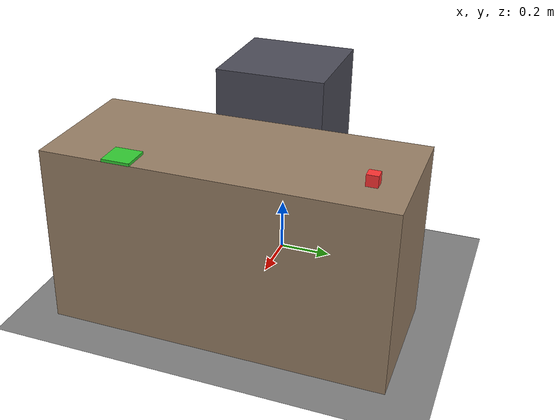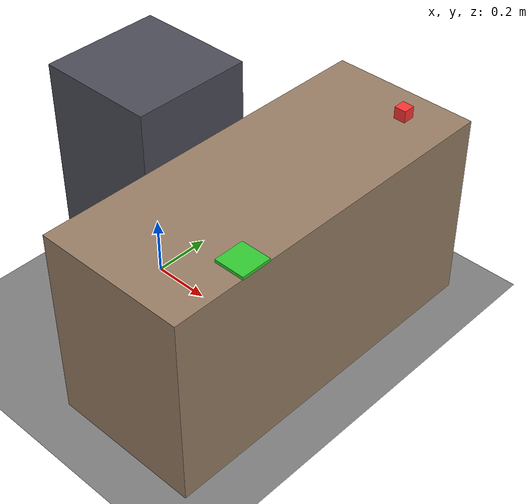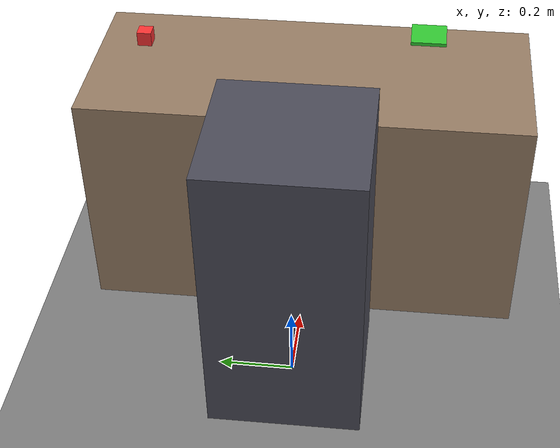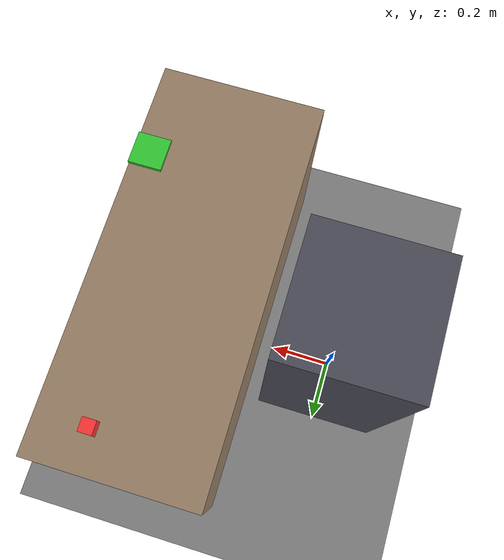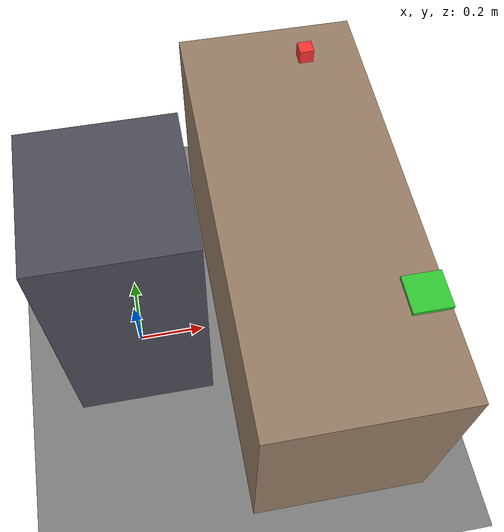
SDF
<?xml version="1.0" ?>
<sdf version="1.8">
  <world name="pick_place_world">
    <!-- Physics -->
    <physics name="1ms" type="ignored">
      <max_step_size>0.002</max_step_size>
      <real_time_factor>1.0</real_time_factor>
    </physics>

    <!-- GUI - Camera looking at robot from behind -->
    <gui fullscreen="0">
      <camera name="user_camera">
        <pose>-2.0 0 1.5 0 0.2 0</pose>
      </camera>
    </gui>

    <!-- Plugins -->
    <plugin filename="gz-sim-physics-system" name="gz::sim::systems::Physics"/>
    <plugin filename="gz-sim-user-commands-system" name="gz::sim::systems::UserCommands"/>
    <plugin filename="gz-sim-scene-broadcaster-system" name="gz::sim::systems::SceneBroadcaster"/>
    <plugin filename="gz-sim-contact-system" name="gz::sim::systems::Contact"/>
    <plugin filename="gz-sim-sensors-system" name="gz::sim::systems::Sensors">
      <render_engine>ogre2</render_engine>
    </plugin>

    <!-- Lighting -->
    <light type="directional" name="sun">
      <cast_shadows>true</cast_shadows>
      <pose>0 0 10 0 0 0</pose>
      <diffuse>0.8 0.8 0.8 1</diffuse>
      <specular>0.2 0.2 0.2 1</specular>
      <attenuation>
        <range>1000</range>
        <constant>0.9</constant>
        <linear>0.01</linear>
        <quadratic>0.001</quadratic>
      </attenuation>
      <direction>-0.5 0.1 -0.9</direction>
    </light>

    <!-- Ground Plane -->
    <model name="ground_plane">
      <static>true</static>
      <link name="link">
        <collision name="collision">
          <geometry>
            <plane>
              <normal>0 0 1</normal>
              <size>100 100</size>
            </plane>
          </geometry>
          <surface>
            <friction>
              <ode>
                <mu>100</mu>
                <mu2>50</mu2>
              </ode>
            </friction>
          </surface>
        </collision>
        <visual name="visual">
          <geometry>
            <plane>
              <normal>0 0 1</normal>
              <size>100 100</size>
            </plane>
          </geometry>
          <material>
            <ambient>0.3 0.3 0.3 1</ambient>
            <diffuse>0.5 0.5 0.5 1</diffuse>
            <specular>0.1 0.1 0.1 1</specular>
          </material>
        </visual>
      </link>
    </model>

    <!-- Robot Stand (where the UR5e is mounted) - top at z=0.8 -->
    <model name="robot_stand">
      <static>true</static>
      <pose>0 0 0.4 0 0 0</pose>
      <link name="stand_link">
        <collision name="collision">
          <geometry>
            <box>
              <size>0.4 0.4 0.8</size>
            </box>
          </geometry>
        </collision>
        <visual name="visual">
          <geometry>
            <box>
              <size>0.4 0.4 0.8</size>
            </box>
          </geometry>
          <material>
            <ambient>0.2 0.2 0.25 1</ambient>
            <diffuse>0.3 0.3 0.35 1</diffuse>
            <specular>0.2 0.2 0.2 1</specular>
          </material>
        </visual>
      </link>
    </model>

    <!-- Work Table - table top at z=0.65 -->
    <model name="work_table">
      <static>true</static>
      <pose>0.5 0 0.325 0 0 0</pose>
      <link name="table_link">
        <collision name="collision">
          <geometry>
            <box>
              <size>0.5 1.2 0.65</size>
            </box>
          </geometry>
        </collision>
        <visual name="visual">
          <geometry>
            <box>
              <size>0.5 1.2 0.65</size>
            </box>
          </geometry>
          <material>
            <ambient>0.4 0.3 0.2 1</ambient>
            <diffuse>0.6 0.5 0.4 1</diffuse>
            <specular>0.1 0.1 0.1 1</specular>
          </material>
        </visual>
      </link>
    </model>

    <!-- Pick Object: Red Cube on table - table top at z=0.65, cube center at z=0.67 -->
    <model name="red_cube">
      <pose>0.5932 0.4761 0.67 0 0 0</pose>
      <link name="cube_link">
        <inertial>
          <mass>0.05</mass>
          <inertia>
            <ixx>0.0000053</ixx>
            <iyy>0.0000053</iyy>
            <izz>0.0000053</izz>
            <ixy>0</ixy>
            <ixz>0</ixz>
            <iyz>0</iyz>
          </inertia>
        </inertial>
        <collision name="collision">
          <geometry>
            <box>
              <size>0.04 0.04 0.04</size>
            </box>
          </geometry>
          <surface>
            <friction>
              <ode>
                <mu>0.5</mu>
                <mu2>0.5</mu2>
              </ode>
            </friction>
            <contact>
              <ode>
                <kp>1e4</kp>
                <kd>10</kd>
              </ode>
            </contact>
          </surface>
        </collision>
        <visual name="visual">
          <geometry>
            <box>
              <size>0.04 0.04 0.04</size>
            </box>
          </geometry>
          <material>
            <ambient>0.8 0.1 0.1 1</ambient>
            <diffuse>1.0 0.2 0.2 1</diffuse>
            <specular>0.3 0.3 0.3 1</specular>
          </material>
        </visual>
      </link>
    </model>

    <!-- Place Platform - on table, platform top at z=0.655 -->
    <model name="place_platform">
      <static>true</static>
      <pose>0.702 -0.3174 0.655 0 0 0</pose>
      <link name="platform_link">
        <collision name="collision">
          <geometry>
            <box>
              <size>0.1 0.1 0.01</size>
            </box>
          </geometry>
        </collision>
        <visual name="visual">
          <geometry>
            <box>
              <size>0.1 0.1 0.01</size>
            </box>
          </geometry>
          <material>
            <ambient>0.1 0.6 0.1 1</ambient>
            <diffuse>0.2 0.8 0.2 1</diffuse>
            <specular>0.2 0.2 0.2 1</specular>
          </material>
        </visual>
      </link>
    </model>

  </world>
</sdf>
